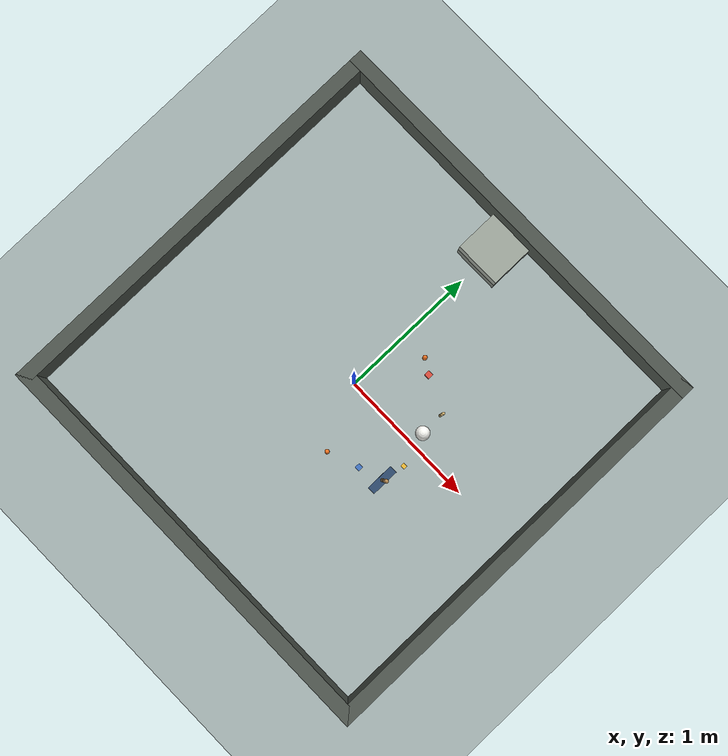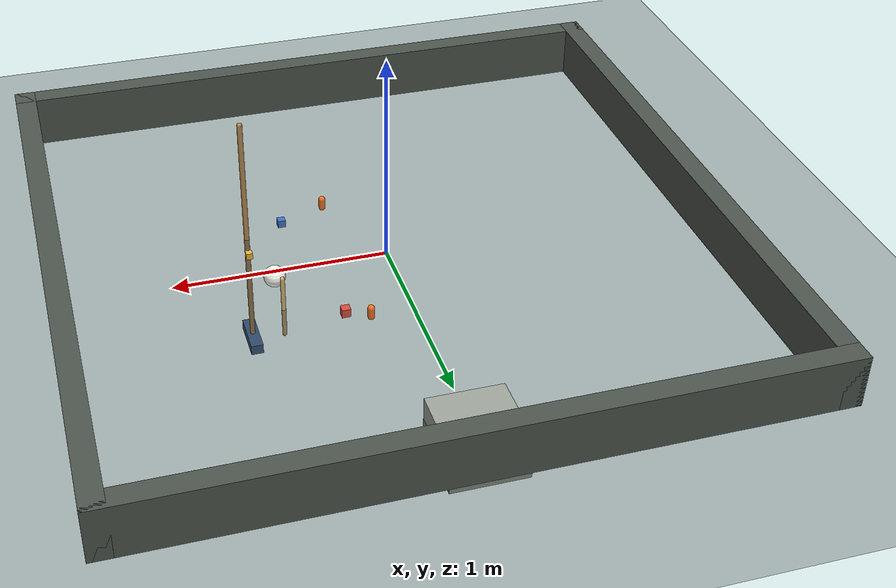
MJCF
<?xml version="1.0" ?>
<!-- Generated using onshape-to-robot -->
<!-- Onshape https://cad.onshape.com/documents/804927696f06d877f3f1803e/w/5b75db19292e71970de02dee/e/ef6e972847fec8d82570b35e -->
<mujoco model="microduck">
  <compiler angle="radian" meshdir="assets" autolimits="true"/>
  <default>
    <default class="microduck">
      <joint frictionloss="0.1" armature="0.005"/>
      <position kp="50" dampratio="1"/>
      <default class="visual">
        <geom type="mesh" contype="0" conaffinity="0" group="2"/>
      </default>
      <default class="collision">
        <geom group="3" contype="5" conaffinity="5"/>
      </default>
    </default>
  </default>
  <!-- Additional joints_properties.xml -->
  <default>
    <default class="perfect_actuator">
      <geom contype="0" conaffinity="0"/>
      <joint damping="0.15" frictionloss="0.1" armature="0.001"/>
      <position kp="10.0" kv="0.1" forcerange="-20.0 20.0"/>
    </default>
    <default class="chosen_actuator_old">
      <geom contype="0" conaffinity="0"/>
      <joint damping="0.048" frictionloss="0.006" armature="0.002"/>
      <position kp="0.52" kv="0.0" forcerange="-0.91 0.91" ctrlrange="-10.0 10.0"/>
    </default>
    <default class="chosen_actuator_new">
      <!-- removing contaminated data -->
      <geom contype="0" conaffinity="0"/>
      <joint damping="0.041" frictionloss="0.032" armature="0.002"/>
      <position kp="0.386" kv="0.0" forcerange="-0.67 0.67" ctrlrange="-10.0 10.0"/>
    </default>
    <default class="chosen_actuator_antoine">
      <geom contype="0" conaffinity="0"/>
      <joint damping="0.044" frictionloss="0.013" armature="0.0017"/>
      <position kp="0.43" kv="0.0" forcerange="-0.75 0.75" ctrlrange="-10.0 10.0"/>
    </default>
    <default class="chosen_actuator">
      <!-- marc -->
      <geom contype="0" conaffinity="0"/>
      <joint damping="0.053" frictionloss="0.0048" armature="0.0018" solreffriction="-50000 -200" solimpfriction="0.99 0.9999 0.001 0.5 2"/>
      <!-- 200 kp -->
      <position kp="0.55" kv="0.0" forcerange="-0.6405 0.6405" ctrlrange="-10.0 10.0"/>
      <!-- 125 kp -->
    </default>
    <default class="passive_wheel">
      <geom contype="0" conaffinity="0"/>
      <joint damping="0.0" frictionloss="0.0" armature="0.0001"/>
    </default>
    <default class="passive_joint">
      <geom contype="0" conaffinity="0"/>
      <joint damping="0.0" frictionloss="0.0" armature="0.0001"/>
    </default>
  </default>
  <!-- Additional sensors.xml -->
  <sensor>
    <framequat name="orientation" objtype="site" noise="0.001" objname="imu"/>
    <gyro name="angular-velocity" site="imu" noise="0.005"/>
    <gyro name="imu_ang_vel" site="imu"/>
    <velocimeter name="imu_lin_vel" site="imu"/>
    <accelerometer name="imu_accel" site="imu"/>
    <subtreeangmom name="root_angmom" body="trunk_base"/>
  </sensor>
  <!-- Additional additional.xml -->
  <default>
    <default class="self_collision_only">
      <geom group="3" contype="2" conaffinity="2"/>
    </default>
    <equality solref="0.002 1" solimp="0.99 0.999 0.0005 0.5 2"/>
  </default>
  <!-- Jaw collision mesh overlaps the bottom head shell by ~2cm because the closed -->
  <!-- loop linkage positions it inside the head. Without these excludes the -->
  <!-- self-collision sensor reports a constant 2 contacts, giving a -->
  <!-- permanent ~-2.0 reward penalty in the standup env. -->
    <option timestep="0.005" gravity="0 0 -9.81" integrator="implicitfast" iterations="10" ls_iterations="20" />
  <worldbody>
    <geom name="floor" type="plane" size="6 6 0.05" pos="0 0 0" rgba="0.16 0.18 0.16 1"
          contype="1" conaffinity="1" condim="3" friction="1.0 0.005 0.0001" />
    <body name="step0" pos="0 1.3050000000000002 0">
      <joint name="step0_x" type="slide" axis="1 0 0" limited="false" damping="0" armature="0" frictionloss="0"/>
      <joint name="step0_z" type="slide" axis="0 0 1" limited="false" damping="0" armature="0" frictionloss="0"/>
      <geom name="step0_geom" type="box" size="0.17 0.17 0.10" pos="0 0 0"
            contype="4" conaffinity="4" condim="3" friction="1.0 0.02 0.001"
            rgba="0.62 0.65 0.61 1" mass="200"/>
    </body>
    <body name="step1" pos="0 1.3050000000000002 0">
      <joint name="step1_x" type="slide" axis="1 0 0" limited="false" damping="0" armature="0" frictionloss="0"/>
      <joint name="step1_z" type="slide" axis="0 0 1" limited="false" damping="0" armature="0" frictionloss="0"/>
      <geom name="step1_geom" type="box" size="0.17 0.17 0.10" pos="0 0 0"
            contype="4" conaffinity="4" condim="3" friction="1.0 0.02 0.001"
            rgba="0.62 0.65 0.61 1" mass="200"/>
    </body>
    <body name="step2" pos="0 1.3050000000000002 0">
      <joint name="step2_x" type="slide" axis="1 0 0" limited="false" damping="0" armature="0" frictionloss="0"/>
      <joint name="step2_z" type="slide" axis="0 0 1" limited="false" damping="0" armature="0" frictionloss="0"/>
      <geom name="step2_geom" type="box" size="0.17 0.17 0.10" pos="0 0 0"
            contype="4" conaffinity="4" condim="3" friction="1.0 0.02 0.001"
            rgba="0.62 0.65 0.61 1" mass="200"/>
    </body>
    <body name="step3" pos="0 1.3050000000000002 0">
      <joint name="step3_x" type="slide" axis="1 0 0" limited="false" damping="0" armature="0" frictionloss="0"/>
      <joint name="step3_z" type="slide" axis="0 0 1" limited="false" damping="0" armature="0" frictionloss="0"/>
      <geom name="step3_geom" type="box" size="0.17 0.17 0.10" pos="0 0 0"
            contype="4" conaffinity="4" condim="3" friction="1.0 0.02 0.001"
            rgba="0.62 0.65 0.61 1" mass="200"/>
    </body>
    <body name="step4" pos="0 1.3050000000000002 0">
      <joint name="step4_x" type="slide" axis="1 0 0" limited="false" damping="0" armature="0" frictionloss="0"/>
      <joint name="step4_z" type="slide" axis="0 0 1" limited="false" damping="0" armature="0" frictionloss="0"/>
      <geom name="step4_geom" type="box" size="0.17 0.17 0.10" pos="0 0 0"
            contype="4" conaffinity="4" condim="3" friction="1.0 0.02 0.001"
            rgba="0.62 0.65 0.61 1" mass="200"/>
    </body>
    <body name="step5" pos="0 1.3050000000000002 0">
      <joint name="step5_x" type="slide" axis="1 0 0" limited="false" damping="0" armature="0" frictionloss="0"/>
      <joint name="step5_z" type="slide" axis="0 0 1" limited="false" damping="0" armature="0" frictionloss="0"/>
      <geom name="step5_geom" type="box" size="0.17 0.17 0.10" pos="0 0 0"
            contype="4" conaffinity="4" condim="3" friction="1.0 0.02 0.001"
            rgba="0.62 0.65 0.61 1" mass="200"/>
    </body>
    <body name="step6" pos="0 1.3050000000000002 0">
      <joint name="step6_x" type="slide" axis="1 0 0" limited="false" damping="0" armature="0" frictionloss="0"/>
      <joint name="step6_z" type="slide" axis="0 0 1" limited="false" damping="0" armature="0" frictionloss="0"/>
      <geom name="step6_geom" type="box" size="0.17 0.17 0.10" pos="0 0 0"
            contype="4" conaffinity="4" condim="3" friction="1.0 0.02 0.001"
            rgba="0.62 0.65 0.61 1" mass="200"/>
    </body>
    <body name="step7" pos="0 1.3050000000000002 0">
      <joint name="step7_x" type="slide" axis="1 0 0" limited="false" damping="0" armature="0" frictionloss="0"/>
      <joint name="step7_z" type="slide" axis="0 0 1" limited="false" damping="0" armature="0" frictionloss="0"/>
      <geom name="step7_geom" type="box" size="0.17 0.17 0.10" pos="0 0 0"
            contype="4" conaffinity="4" condim="3" friction="1.0 0.02 0.001"
            rgba="0.62 0.65 0.61 1" mass="200"/>
    </body>
    <body name="step8" pos="0 1.3050000000000002 0">
      <joint name="step8_x" type="slide" axis="1 0 0" limited="false" damping="0" armature="0" frictionloss="0"/>
      <joint name="step8_z" type="slide" axis="0 0 1" limited="false" damping="0" armature="0" frictionloss="0"/>
      <geom name="step8_geom" type="box" size="0.17 0.17 0.10" pos="0 0 0"
            contype="4" conaffinity="4" condim="3" friction="1.0 0.02 0.001"
            rgba="0.62 0.65 0.61 1" mass="200"/>
    </body>
    <body name="step9" pos="0 1.3050000000000002 0">
      <joint name="step9_x" type="slide" axis="1 0 0" limited="false" damping="0" armature="0" frictionloss="0"/>
      <joint name="step9_z" type="slide" axis="0 0 1" limited="false" damping="0" armature="0" frictionloss="0"/>
      <geom name="step9_geom" type="box" size="0.17 0.17 0.10" pos="0 0 0"
            contype="4" conaffinity="4" condim="3" friction="1.0 0.02 0.001"
            rgba="0.62 0.65 0.61 1" mass="200"/>
    </body>
    <body name="step10" pos="0 1.3050000000000002 0">
      <joint name="step10_x" type="slide" axis="1 0 0" limited="false" damping="0" armature="0" frictionloss="0"/>
      <joint name="step10_z" type="slide" axis="0 0 1" limited="false" damping="0" armature="0" frictionloss="0"/>
      <geom name="step10_geom" type="box" size="0.17 0.17 0.10" pos="0 0 0"
            contype="4" conaffinity="4" condim="3" friction="1.0 0.02 0.001"
            rgba="0.62 0.65 0.61 1" mass="200"/>
    </body>
    <body name="step11" pos="0 1.3050000000000002 0">
      <joint name="step11_x" type="slide" axis="1 0 0" limited="false" damping="0" armature="0" frictionloss="0"/>
      <joint name="step11_z" type="slide" axis="0 0 1" limited="false" damping="0" armature="0" frictionloss="0"/>
      <geom name="step11_geom" type="box" size="0.17 0.17 0.10" pos="0 0 0"
            contype="4" conaffinity="4" condim="3" friction="1.0 0.02 0.001"
            rgba="0.62 0.65 0.61 1" mass="200"/>
    </body>
    <body name="step12" pos="0 1.3050000000000002 0">
      <joint name="step12_x" type="slide" axis="1 0 0" limited="false" damping="0" armature="0" frictionloss="0"/>
      <joint name="step12_z" type="slide" axis="0 0 1" limited="false" damping="0" armature="0" frictionloss="0"/>
      <geom name="step12_geom" type="box" size="0.17 0.17 0.10" pos="0 0 0"
            contype="4" conaffinity="4" condim="3" friction="1.0 0.02 0.001"
            rgba="0.62 0.65 0.61 1" mass="200"/>
    </body>
    <body name="step13" pos="0 1.3050000000000002 0">
      <joint name="step13_x" type="slide" axis="1 0 0" limited="false" damping="0" armature="0" frictionloss="0"/>
      <joint name="step13_z" type="slide" axis="0 0 1" limited="false" damping="0" armature="0" frictionloss="0"/>
      <geom name="step13_geom" type="box" size="0.17 0.17 0.10" pos="0 0 0"
            contype="4" conaffinity="4" condim="3" friction="1.0 0.02 0.001"
            rgba="0.62 0.65 0.61 1" mass="200"/>
    </body>
    <geom name="wall_n" type="box" size="1.55 0.05 0.125" pos="0.0 1.5 0.125"
          contype="1" conaffinity="5" condim="3" friction="1.0 0.02 0.001"
          rgba="0.30 0.33 0.30 1"/>
    <geom name="wall_s" type="box" size="1.55 0.05 0.125" pos="0.0 -1.5 0.125"
          contype="1" conaffinity="5" condim="3" friction="1.0 0.02 0.001"
          rgba="0.30 0.33 0.30 1"/>
    <geom name="wall_e" type="box" size="0.05 1.55 0.125" pos="1.5 0.0 0.125"
          contype="1" conaffinity="5" condim="3" friction="1.0 0.02 0.001"
          rgba="0.30 0.33 0.30 1"/>
    <geom name="wall_w" type="box" size="0.05 1.55 0.125" pos="-1.5 0.0 0.125"
          contype="1" conaffinity="5" condim="3" friction="1.0 0.02 0.001"
          rgba="0.30 0.33 0.30 1"/>
    <body name="ball" pos="0.55 0.10 0.05">
      <freejoint name="ball_free"/>
      <!-- Pollen's own ball: BALL_RADIUS 0.05, mass 0.03, and condim 6 because
           with the default condim 3 a rolling ball never decelerates. -->
      <geom name="ball_geom" type="sphere" size="0.05" mass="0.03"
            contype="1" conaffinity="5" condim="6" friction="0.4 0.01 0.003"
            solref="0.03 0.4" rgba="0.96 0.96 0.94 1"/>
    </body>
    <body name="block_a" pos="0.30 0.40 0.021">
      <freejoint name="block_a_free"/>
      <geom name="block_a_geom" type="box" size="0.02 0.02 0.02" mass="0.030"
            contype="1" conaffinity="5" condim="4" friction="0.9 0.02 0.002"
            rgba="0.85 0.30 0.24 1"/>
    </body>
    <body name="block_b" pos="0.42 -0.36 0.019">
      <freejoint name="block_b_free"/>
      <geom name="block_b_geom" type="box" size="0.018 0.018 0.018" mass="0.025"
            contype="1" conaffinity="5" condim="4" friction="0.9 0.02 0.002"
            rgba="0.25 0.45 0.75 1"/>
    </body>
    <body name="block_c" pos="0.62 -0.14 0.016">
      <freejoint name="block_c_free"/>
      <geom name="block_c_geom" type="box" size="0.015 0.015 0.015" mass="0.018"
            contype="1" conaffinity="5" condim="4" friction="0.9 0.02 0.002"
            rgba="0.92 0.72 0.20 1"/>
    </body>
    <body name="cone_a" pos="0.20 -0.44 0.038">
      <freejoint name="cone_a_free"/>
      <geom name="cone_a_geom" type="capsule" size="0.016 0.022" mass="0.020"
            contype="1" conaffinity="5" condim="4" friction="0.8 0.02 0.002"
            rgba="0.94 0.45 0.13 1"/>
    </body>
    <body name="broom" pos="0.60 -0.30 0.0125" quat="0.7071068 0 0 0.7071068">
      <freejoint name="broom_free"/>
      <!-- Handle: 1.2 m, 25 mm across, 350 g. condim 4 so it does not slide
           for ever once it is pulled. -->
      <geom name="broom_handle" type="capsule" size="0.0125 0.6" mass="0.350"
            contype="1" conaffinity="5" condim="4" friction="0.5 0.02 0.002"
            rgba="0.72 0.55 0.33 1"/>
      <!-- Head: 250 g at one end, which is what makes a broom pivot rather
           than slide flat. -->
      <geom name="broom_head" type="box" pos="0 0 -0.60" size="0.11 0.03 0.025"
            mass="0.250" contype="1" conaffinity="5" condim="4"
            friction="0.7 0.02 0.002" rgba="0.20 0.35 0.55 1"/>
    </body>
    <body name="dowel" pos="0.55 0.28 0.010" quat="0.7071068 0 0 0.7071068">
      <freejoint name="dowel_free"/>
      <!-- The one it can actually lift: 25 g, inside the 10-40 g the
           ground-pick policy was trained to carry, and 20 mm across, which is
           exactly where the shut jaw sits. -->
      <geom name="dowel_geom" type="capsule" size="0.010 0.15" mass="0.025"
            contype="1" conaffinity="5" condim="4" friction="0.5 0.02 0.002"
            rgba="0.85 0.72 0.45 1"/>
    </body>
    <body name="cone_b" pos="0.20 0.46 0.038">
      <freejoint name="cone_b_free"/>
      <geom name="cone_b_geom" type="capsule" size="0.016 0.022" mass="0.020"
            contype="1" conaffinity="5" condim="4" friction="0.8 0.02 0.002"
            rgba="0.94 0.45 0.13 1"/>
    </body>

  </worldbody>
  <worldbody>
    <!-- Link trunk_base -->
    <body name="trunk_base" pos="0 0 0.12" quat="1 0 0 0" childclass="microduck">
      <freejoint name="trunk_base_freejoint"/>
      <inertial pos="-0.0226332 -2.70828e-05 0.00280064" mass="0.199224" fullinertia="0.000123975 0.000145931 0.000115351 7.1651e-08 -2.06915e-05 1.32429e-07"/>
      <!-- Part seeed_bearing__configuration__22x16x4 -->
      <!-- Part right_shell -->
      <!-- Part banana_pcb_locker -->
      <!-- Part trunk_base -->
      <!-- Part xl330 -->
      <!-- Part power_support -->
      <geom type="mesh" class="self_collision_only" pos="0.004 -0 -0.0175215" quat="0.707107 -0 0 0.707107" mesh="power_support"/>
      <!-- Part np_f970 -->
      <geom type="mesh" class="collision" pos="-0.0359693 0 -0.00385049" quat="0.00617059 0.70708 -0.70708 -0.00617059" mesh="np_f970"/>
      <!-- Part xl330_2 -->
      <!-- Part left_shell -->
      <!-- Part seeed_bearing__configuration__22x16x4_2 -->
      <!-- Frame imu -->
      <site group="3" name="imu" pos="-0.021 6.64098e-05 -0.0146984" quat="1 -0 -0 0"/>
      <!-- Link yaw2roll -->
      <body name="yaw2roll" pos="0.006 0.0175 -0.005" quat="0 -0.707107 -0.707107 -0">
        <!-- Joint from trunk_base to yaw2roll -->
        <joint axis="0 0 1" name="left_hip_yaw" type="hinge" range="-0.4363323129985824 0.5235987755982988" class="chosen_actuator"/>
        <inertial pos="-8.8e-11 0.00099414 0.0168917" mass="0.0230406" fullinertia="4.1964e-06 3.41752e-06 2.3265e-06 -0 -0 -5.0881e-08"/>
        <!-- Part yaw2roll -->
        <!-- Part xl330_3 -->
        <!-- Part seeed_bearing__configuration__22x16x4_3 -->
        <!-- Part bearing_roll -->
        <!-- Link hip_l -->
        <body name="hip_l" pos="0 0.0165 0.0125" quat="0.707107 -0.707107 -0 -0">
          <!-- Joint from yaw2roll to hip_l -->
          <joint axis="0 0 1" name="left_hip_roll" type="hinge" range="-0.3839724354387525 0.3839724354387525" class="chosen_actuator"/>
          <inertial pos="0.014815 1.6179e-08 -0.00829992" mass="0.00618934" fullinertia="8.60626e-07 1.15753e-06 6.51588e-07 1e-12 3.89882e-07 -1e-12"/>
          <!-- Part seeed_bearing__configuration__22x16x4_4 -->
          <!-- Part hip_l -->
          <geom type="mesh" class="collision" pos="-0.0175 0 -0.0185" quat="0.707107 -0.707107 0 -0" mesh="hip_l"/>
          <!-- Link upper_leg_left -->
          <body name="upper_leg_left" pos="0.025 0 -0.0185" quat="0.5 -0.5 0.5 -0.5">
            <!-- Joint from hip_l to upper_leg_left -->
            <joint axis="0 0 1" name="left_hip_pitch" type="hinge" range="-1.570796326795005 1.5707963267947882" class="chosen_actuator"/>
            <inertial pos="0.006766 0.0228838 0.0134531" mass="0.0482067" fullinertia="1.68753e-05 1.03691e-05 1.98269e-05 -4.41852e-06 2.27982e-07 3.89298e-07"/>
            <!-- Part upper_leg_left -->
            <!-- Part xl330_4 -->
            <!-- Part upper_leg_rigidity_plate -->
            <!-- Part seeed_bearing__configuration__22x16x4_5 -->
            <!-- Part xl330_5 -->
            <!-- Link leg -->
            <body name="leg" pos="0.022 0.0357771 -0.004" quat="0 0.707107 0.707107 0">
              <!-- Joint from upper_leg_left to leg -->
              <joint axis="0 0 1" name="left_knee" type="hinge" range="-1.570796326795012 1.570796326794781" class="chosen_actuator"/>
              <inertial pos="-1.52e-10 0.0318937 -0.00953505" mass="0.0215844" fullinertia="5.25056e-06 2.15507e-06 4.33925e-06 -1e-12 0 7.65005e-07"/>
              <!-- Part leg -->
              <geom type="mesh" class="collision" pos="-0.022 0.0357771 0.0385" quat="0.5 0.5 0.5 -0.5" mesh="leg"/>
              <!-- Part xl330_6 -->
              <!-- Link ankle_left -->
              <body name="ankle_left" pos="0 0.042 -0.026" quat="0 1 -0 0">
                <!-- Joint from leg to ankle_left -->
                <joint axis="0 0 1" name="left_ankle" type="hinge" range="-1.5707963267949019 1.5707963267948912" class="chosen_actuator"/>
                <inertial pos="-0.00615738 -0.0137483 -0.0156586" mass="0.0300246" fullinertia="5.91525e-06 1.11534e-05 7.74015e-06 -2.0535e-07 8.2152e-08 5.6714e-08"/>
                <!-- Part sole_left -->
                <geom type="mesh" name="left_foot_collision" class="collision" pos="-0.022 0.00622291 -0.0647" quat="0.5 -0.5 -0.5 -0.5" mesh="sole_left" priority="1" friction="1.0 0.005 0.0001"/>
                <!-- Part foot_left -->
                <!-- Part seeed_bearing__configuration_default -->
                <!-- Part ankle_left -->
                <!-- Frame left_foot -->
                <site group="3" name="left_foot" pos="-0 -0.0238146 -0.0140852" quat="0 0 0.707107 0.707107"/>
              </body>
            </body>
          </body>
        </body>
      </body>
      <!-- Link neck -->
      <body name="neck" pos="0.026 0.0145 0.0324215" quat="0 0 0.707107 -0.707107">
        <!-- Joint from trunk_base to neck -->
        <joint axis="0 0 1" name="neck_pitch" type="hinge" range="-1.5707963267948966 1.0471975511965976" class="chosen_actuator"/>
        <inertial pos="0 -0.025 0.0141665" mass="0.0368414" fullinertia="1.72925e-05 3.12694e-06 1.63707e-05 0 0 0"/>
        <!-- Part neck -->
        <!-- Part xl330_7 -->
        <!-- Part xl330_8 -->
        <!-- Part neck_2 -->
        <!-- Link neck_pitch -->
        <body name="neck_pitch" pos="0 -0.05 -0" quat="0 1 0 0">
          <!-- Joint from neck to neck_pitch -->
          <joint axis="0 0 1" name="head_pitch" type="hinge" range="-1.5707963267948974 1.5707963267948957" class="chosen_actuator"/>
          <inertial pos="-6.533e-09 0.0116641 -0.0145" mass="0.00572" fullinertia="1.09186e-06 9.66855e-07 5.12111e-07 0 0 0"/>
          <!-- Part neck_pitch -->
          <!-- Part seeed_bearing__configuration__22x16x4_6 -->
          <!-- Link yaw_roll_motion -->
          <body name="yaw_roll_motion" pos="-0 0.0186931 -0.0145" quat="0 0 -0.707107 -0.707107">
            <!-- Joint from neck_pitch to yaw_roll_motion -->
            <joint axis="0 0 1" name="head_yaw" type="hinge" range="-2.967059728390373 2.967059728390348" class="chosen_actuator"/>
            <inertial pos="-0.000166657 -0.00500964 0.0178065" mass="0.0486" fullinertia="6.97903e-06 8.10293e-06 9.57884e-06 3.21657e-07 -3.4797e-08 3.4295e-07"/>
            <!-- Part yaw_roll_motion -->
            <!-- Part xl330_9 -->
            <!-- Part seeed_bearing__configuration__22x16x4_7 -->
            <!-- Part seeed_bearing__configuration__22x16x4_8 -->
            <!-- Link jaw_soft -->
            <body name="jaw_soft" pos="-0.0179 0 0.0145" quat="0.707107 -0 -0.707107 -0">
              <!-- Joint from yaw_roll_motion to jaw_soft -->
              <joint axis="0 0 1" name="head_roll" type="hinge" range="-0.43633231299859127 0.4363323129985735" class="chosen_actuator"/>
              <inertial pos="0.00460523 0.00120047 -0.0324761" mass="0.188766" fullinertia="0.000320812 0.0002541 0.000149882 -6.32292e-07 6.57154e-06 4.18476e-06"/>
              <!-- Part lens -->
              <!-- Part face_part -->
              <!-- Part xl330_10 -->
              <!-- Part jaw_soft -->
              <!-- Part motor_support -->
              <!-- Part top_head_shell -->
              <geom type="mesh" class="collision" pos="-0.0045 -0 -0.018" quat="0.5 0.5 0.5 0.5" mesh="top_head_shell"/>
              <!-- Part xl330_11 -->
              <!-- Part seeed_bearing__configuration_default_2 -->
              <!-- Part elec_rpi_robot_hat_pcb -->
              <!-- Part soft_mouth_top -->
              <!-- Part noenoeil -->
              <!-- Part jaw -->
              <geom type="mesh" class="collision" pos="-0.0045 0 -0.018" quat="0.5 0.5 0.5 0.5" mesh="jaw"/>
              <!-- Part bottom_head_shell -->
              <geom type="mesh" class="collision" pos="-0.0043 -0 -0.018" quat="0.5 0.5 0.5 0.5" mesh="bottom_head_shell"/>
              <!-- Part m12_lens_holder -->
              <!-- Part pcb__raspberry_pi_zero_2_w -->
              <!-- Part speaker -->
              <!-- Frame head_camera -->
              <site group="3" name="head_camera" pos="0.0155 -9.13778e-05 -0.0733" quat="0.707107 0 0.707107 -0"/>
              <camera name="head_camera" pos="0.0155 -9.13778e-05 -0.0733" quat="0 0 -1 0"/>
              <!-- Frame tof -->
              <site group="3" name="tof" pos="0.0135 0.0224086 -0.0733" quat="0.707107 0 0.707107 -0"/>
              <!-- Frame head_imu -->
              <site group="3" name="head_imu" pos="0.0152323 0.000111069 -0.05106" quat="1 0 0 -0"/>
              <!-- Frame mouth_tip -->
              <site group="3" name="mouth_tip" pos="-0.00809334 -0 -0.0777383" quat="0.704015 0 0.710185 -0"/>
            </body>
          </body>
        </body>
      </body>
      <!-- Link bearing_roll -->
      <body name="bearing_roll" pos="0.006 -0.0175 -0.005" quat="0 0.707107 0.707107 0">
        <!-- Joint from trunk_base to bearing_roll -->
        <joint axis="0 0 1" name="right_hip_yaw" type="hinge" range="-0.5235987755982988 0.4363323129985824" class="chosen_actuator"/>
        <inertial pos="-8.8e-11 0.00099414 0.0168917" mass="0.0230406" fullinertia="4.1964e-06 3.41752e-06 2.3265e-06 -0 -0 -5.0881e-08"/>
        <!-- Part yaw2roll_2 -->
        <!-- Part xl330_12 -->
        <!-- Part bearing_roll_2 -->
        <!-- Part seeed_bearing__configuration__22x16x4_9 -->
        <!-- Link hip_l_2 -->
        <body name="hip_l_2" pos="-0 0.0165 0.0125" quat="0 -0 0.707107 0.707107">
          <!-- Joint from bearing_roll to hip_l_2 -->
          <joint axis="0 0 1" name="right_hip_roll" type="hinge" range="-0.3839724354387525 0.3839724354387525" class="chosen_actuator"/>
          <inertial pos="0.014815 1.6212e-08 -0.00829992" mass="0.00618934" fullinertia="8.60626e-07 1.15753e-06 6.51588e-07 1e-12 3.89882e-07 -1e-12"/>
          <!-- Part hip_l_2 -->
          <geom type="mesh" class="collision" pos="-0.0175 0 -0.0185" quat="0.707107 -0.707107 -0 -0" mesh="hip_l"/>
          <!-- Part seeed_bearing__configuration__22x16x4_10 -->
          <!-- Link upper_leg_right -->
          <body name="upper_leg_right" pos="0.025 0 -0.0185" quat="0.5 -0.5 0.5 -0.5">
            <!-- Joint from hip_l_2 to upper_leg_right -->
            <joint axis="0 0 1" name="right_hip_pitch" type="hinge" range="-1.5707963267949268 1.5707963267948664" class="chosen_actuator"/>
            <inertial pos="-0.006766 0.0228838 0.0134531" mass="0.0482067" fullinertia="1.68753e-05 1.03691e-05 1.98269e-05 4.41852e-06 -2.27982e-07 3.89298e-07"/>
            <!-- Part xl330_13 -->
            <!-- Part seeed_bearing__configuration__22x16x4_11 -->
            <!-- Part upper_leg_rigidity_plate_2 -->
            <!-- Part upper_leg_right -->
            <!-- Part xl330_14 -->
            <!-- Link leg_2 -->
            <body name="leg_2" pos="-0.022 0.0357771 -0.004" quat="0 1 -0 -0">
              <!-- Joint from upper_leg_right to leg_2 -->
              <joint axis="0 0 1" name="right_knee" type="hinge" range="-1.570796326794932 1.570796326794861" class="chosen_actuator"/>
              <inertial pos="-0.0318937 -1.52e-10 -0.00953505" mass="0.0215844" fullinertia="2.15507e-06 5.25056e-06 4.33925e-06 1e-12 -7.65005e-07 0"/>
              <!-- Part xl330_15 -->
              <!-- Part leg_2 -->
              <geom type="mesh" class="collision" pos="-0.0357771 -0.022 0.0385" quat="0.707107 0 0.707107 -0" mesh="leg"/>
              <!-- Link ankle_right -->
              <body name="ankle_right" pos="-0.042 0 -0.026" quat="0 -0.707107 -0.707107 0">
                <!-- Joint from leg_2 to ankle_right -->
                <joint axis="0 0 1" name="right_ankle" type="hinge" range="-1.5707963267949054 1.5707963267948877" class="chosen_actuator"/>
                <inertial pos="0.00615539 -0.0137482 -0.0156566" mass="0.0300251" fullinertia="5.91534e-06 1.11534e-05 7.74016e-06 2.04877e-07 -8.247e-08 5.7017e-08"/>
                <!-- Part ankle_right -->
                <!-- Part sole_right -->
                <geom type="mesh" name="right_foot_collision" class="collision" pos="0.022 0.00622291 -0.0647" quat="0.5 -0.5 0.5 0.5" mesh="sole_right" priority="1" friction="1.0 0.005 0.0001"/>
                <!-- Part seeed_bearing__configuration_default_3 -->
                <!-- Part foot_right -->
                <!-- Frame right_foot -->
                <site group="3" name="right_foot" pos="0 -0.0238146 -0.0140852" quat="0.707107 -0.707107 0 0"/>
              </body>
            </body>
          </body>
        </body>
      </body>
    </body>
  </worldbody>
  <asset>
    <mesh file="sole_left.stl"/>
    <mesh file="sole_right.stl"/>
    <mesh file="leg.stl"/>
    <mesh file="top_head_shell.stl"/>
    <mesh file="bottom_head_shell.stl"/>
    <mesh file="np_f970.stl"/>
    <mesh file="hip_l.stl"/>
    <mesh file="power_support.stl"/>
    <mesh file="jaw.stl"/>
  </asset>
  <actuator>
    <position class="chosen_actuator" name="left_hip_yaw" joint="left_hip_yaw"/>
    <position class="chosen_actuator" name="left_hip_roll" joint="left_hip_roll"/>
    <position class="chosen_actuator" name="left_hip_pitch" joint="left_hip_pitch"/>
    <position class="chosen_actuator" name="left_knee" joint="left_knee"/>
    <position class="chosen_actuator" name="left_ankle" joint="left_ankle"/>
    <position class="chosen_actuator" name="neck_pitch" joint="neck_pitch"/>
    <position class="chosen_actuator" name="head_pitch" joint="head_pitch"/>
    <position class="chosen_actuator" name="head_yaw" joint="head_yaw"/>
    <position class="chosen_actuator" name="head_roll" joint="head_roll"/>
    <position class="chosen_actuator" name="right_hip_yaw" joint="right_hip_yaw"/>
    <position class="chosen_actuator" name="right_hip_roll" joint="right_hip_roll"/>
    <position class="chosen_actuator" name="right_hip_pitch" joint="right_hip_pitch"/>
    <position class="chosen_actuator" name="right_knee" joint="right_knee"/>
    <position class="chosen_actuator" name="right_ankle" joint="right_ankle"/>
  </actuator>
  <equality/>
</mujoco>
